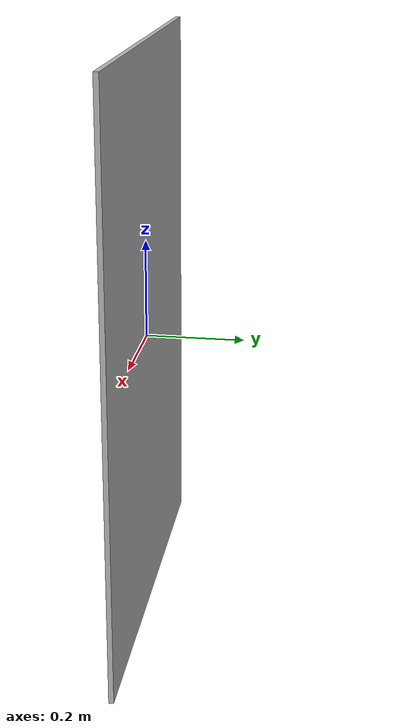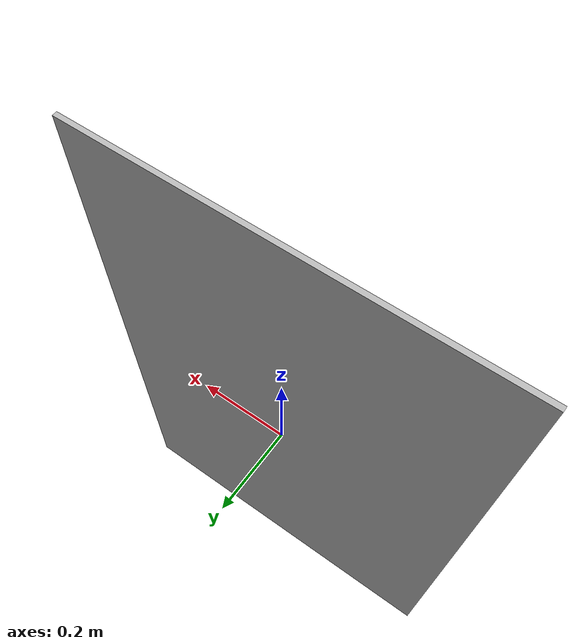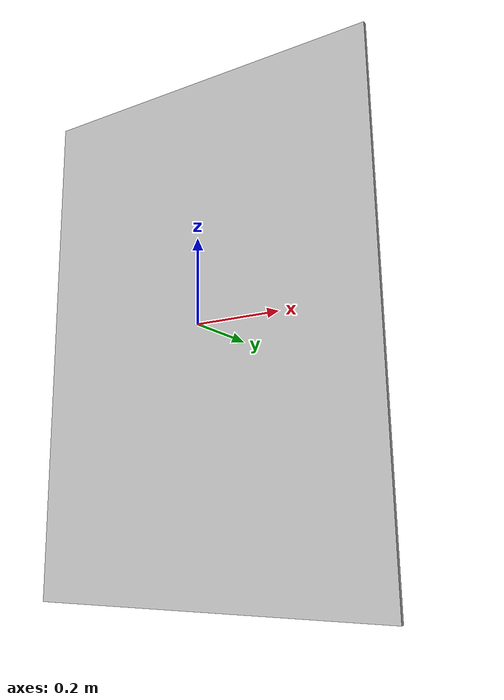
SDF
<?xml version="1.0" ?>
<sdf version="1.6">
  <model name="calibration_pattern">
    <link name="link">
      <inertial>
        <mass>1</mass>
      </inertial>
      <collision name="collision">
        <geometry>
          <box>
            <size>0.841 0.01 1.189</size>
          </box>
        </geometry>
      </collision>
      <visual name="visual">
	      <geometry>
          <box>
            <size>0.841 0.01 1.189</size>
          </box>
        </geometry>
          <material>
            <script>
              <uri>model://calibration_pattern/materials/scripts/calibration_pattern.material</uri>
              <name>Aprilgrid</name>
            </script>
          </material>
      <meta> <layer> 2 </layer></meta>
      </visual>
    </link>
	<static>1</static>
  </model>
</sdf>
